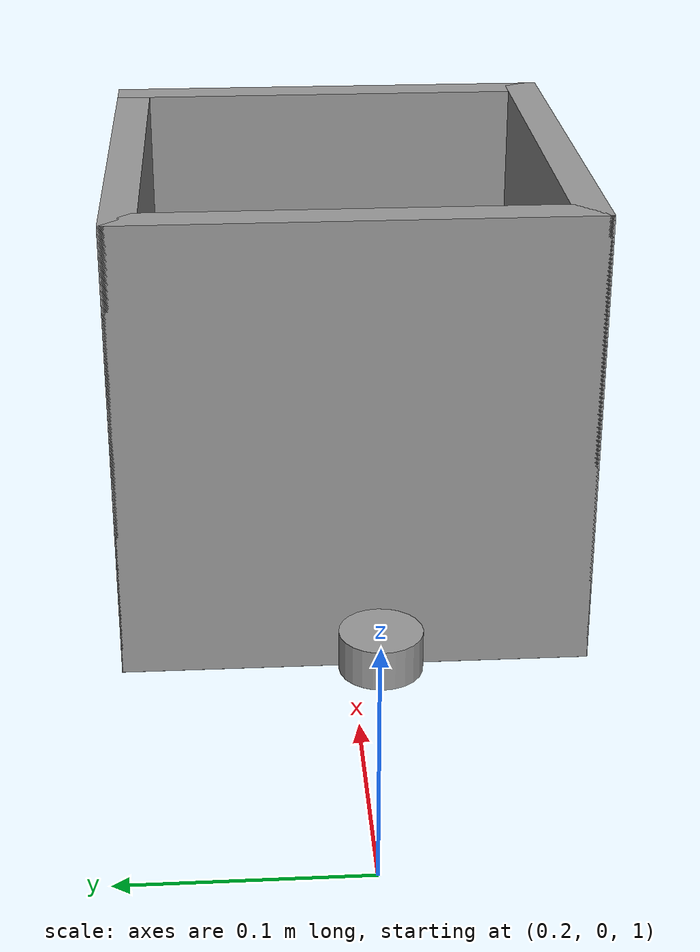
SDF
<sdf version="1.6">
 <world name="CRANE-X7 with Table">
  <include><uri>model://sun</uri></include>
  <model name="bottlecap4">
   <link name="link_0">
    <inertial>
     <mass>0.300</mass>
     <inertia>
      <ixx>0.0422855</ixx>
      <ixy>0</ixy>
      <ixz>0</ixz>
      <iyy>0.0422855</iyy>
      <iyz>0</iyz>
      <izz>0.0641301</izz>
     </inertia>
    </inertial>
    <visual name="visual">
     <geometry><cylinder><radius>0.015</radius><length>0.015</length></cylinder></geometry>
     <material>
      <lighting>1</lighting>
      <script><uri>file://media/materials/scripts/gazebo.material</uri><name>Gazebo/Grey</name></script>
      <shader type="vertex"><normal_map>__default__</normal_map></shader>
      <ambient>0.3 0.3 0.3 1</ambient>
      <diffuse>0.7 0.7 0.7 1</diffuse>
      <specular>0.01 0.01 0.01 1</specular>
      <emissive>0 0 0 1</emissive>
     </material>
    </visual>
    <collision name="collision">
     <geometry><cylinder><radius>0.015</radius><length>0.015</length></cylinder></geometry>
     <surface>
      <friction>
       <ode><mu>1</mu><mu2>1</mu2><fdir1>0 0 0</fdir1><slip1>0</slip1><slip2>0</slip2></ode>
       <torsional>
        <coefficient>1</coefficient>
        <patch_radius>0</patch_radius>
        <surface_radius>0</surface_radius>
        <use_patch_radius>1</use_patch_radius>
        <ode><slip>0</slip></ode>
       </torsional>
      </friction>
      <bounce><restitution_coefficient>0</restitution_coefficient><threshold>1e+06</threshold></bounce>
      <contact>
       <collide_without_contact>0</collide_without_contact>
       <collide_without_contact_bitmask>1</collide_without_contact_bitmask>
       <collide_bitmask>1</collide_bitmask>
       <ode>
        <soft_cfm>0</soft_cfm>
        <soft_erp>0.2</soft_erp>
        <kp>1e+13</kp>
        <kd>1</kd>
        <max_vel>0.01</max_vel>
        <min_depth>0</min_depth>
       </ode>
       <bullet>
        <split_impulse>1</split_impulse>
        <split_impulse_penetration_threshold>-0.01</split_impulse_penetration_threshold>
        <soft_cfm>0</soft_cfm>
        <soft_erp>0.2</soft_erp>
        <kp>1e+13</kp>
        <kd>1</kd>
       </bullet>
      </contact>
     </surface>
    </collision>
   </link>
   <static>0</static>
   <pose>0.2 0 1.1 0 0 0</pose>
  </model>
  <model name="trashbin">
   <link name="link_0">
    <inertial>
     <mass>0.500</mass>
     <inertia>
      <ixx>0.00236322</ixx>
      <ixy>0</ixy>
      <ixz>0</ixz>
      <iyy>0.00236322</iyy>
      <iyz>0</iyz>
      <izz>0.0047</izz>
     </inertia>
    </inertial>
    <pose>0.020 0 -0.075 0 -0 0</pose>
    <visual name="visual">
     <geometry><box><size>0.2 0.2 0.015</size></box></geometry>
     <material>
      <lighting>1</lighting>
      <script><uri>file://media/materials/scripts/gazebo.material</uri><name>Gazebo/Grey</name></script>
      <shader type="vertex"><normal_map>__default__</normal_map></shader>
      <ambient>0.3 0.3 0.3 1</ambient>
      <diffuse>0.7 0.7 0.7 1</diffuse>
      <specular>0.01 0.01 0.01 1</specular>
      <emissive>0 0 0 1</emissive>
     </material>
    </visual>
    <collision name="collision">
     <geometry><box><size>0.2 0.2 0.015</size></box></geometry>
     <surface>
      <friction>
       <ode><mu>1</mu><mu2>1</mu2><fdir1>0 0 0</fdir1><slip1>0</slip1><slip2>0</slip2></ode>
       <torsional>
        <coefficient>1</coefficient>
        <patch_radius>0</patch_radius>
        <surface_radius>0</surface_radius>
        <use_patch_radius>1</use_patch_radius>
        <ode><slip>0</slip></ode>
       </torsional>
      </friction>
      <bounce><restitution_coefficient>0</restitution_coefficient><threshold>1e+06</threshold></bounce>
      <contact>
       <collide_without_contact>0</collide_without_contact>
       <collide_without_contact_bitmask>1</collide_without_contact_bitmask>
       <collide_bitmask>1</collide_bitmask>
       <ode>
        <soft_cfm>0</soft_cfm>
        <soft_erp>0.2</soft_erp>
        <kp>1e+13</kp>
        <kd>1</kd>
        <max_vel>0.01</max_vel>
        <min_depth>0</min_depth>
       </ode>
       <bullet>
        <split_impulse>1</split_impulse>
        <split_impulse_penetration_threshold>-0.01</split_impulse_penetration_threshold>
        <soft_cfm>0</soft_cfm>
        <soft_erp>0.2</soft_erp>
        <kp>1e+13</kp>
        <kd>1</kd>
       </bullet>
      </contact>
     </surface>
    </collision>
   </link>
   <link name="link_1">
    <inertial>
     <mass>0.500</mass>
     <inertia>
      <ixx>0.00236322</ixx>
      <ixy>0</ixy>
      <ixz>0</ixz>
      <iyy>0.0047</iyy>
      <iyz>0</iyz>
      <izz>0.00236322</izz>
     </inertia>
    </inertial>
    <pose>0.0185 -0.0925 0.0185 0 -0 0</pose>
    <visual name="visual">
     <geometry><box><size>0.2 0.015 0.2</size></box></geometry>
     <material>
      <lighting>1</lighting>
      <script><uri>file://media/materials/scripts/gazebo.material</uri><name>Gazebo/Grey</name></script>
      <shader type="vertex"><normal_map>__default__</normal_map></shader>
      <ambient>0.3 0.3 0.3 1</ambient>
      <diffuse>0.7 0.7 0.7 1</diffuse>
      <specular>0.01 0.01 0.01 1</specular>
      <emissive>0 0 0 1</emissive>
     </material>
    </visual>
    <collision name="collision">
     <geometry><box><size>0.2 0.015 0.2</size></box></geometry>
     <surface>
      <friction>
       <ode><mu>1</mu><mu2>1</mu2><fdir1>0 0 0</fdir1><slip1>0</slip1><slip2>0</slip2></ode>
       <torsional>
        <coefficient>1</coefficient>
        <patch_radius>0</patch_radius>
        <surface_radius>0</surface_radius>
        <use_patch_radius>1</use_patch_radius>
        <ode><slip>0</slip></ode>
       </torsional>
      </friction>
      <bounce><restitution_coefficient>0</restitution_coefficient><threshold>1e+06</threshold></bounce>
      <contact>
       <collide_without_contact>0</collide_without_contact>
       <collide_without_contact_bitmask>1</collide_without_contact_bitmask>
       <collide_bitmask>1</collide_bitmask>
       <ode>
        <soft_cfm>0</soft_cfm>
        <soft_erp>0.2</soft_erp>
        <kp>1e+13</kp>
        <kd>1</kd>
        <max_vel>0.01</max_vel>
        <min_depth>0</min_depth>
       </ode>
       <bullet>
        <split_impulse>1</split_impulse>
        <split_impulse_penetration_threshold>-0.01</split_impulse_penetration_threshold>
        <soft_cfm>0</soft_cfm>
        <soft_erp>0.2</soft_erp>
        <kp>1e+13</kp>
        <kd>1</kd>
       </bullet>
      </contact>
     </surface>
    </collision>
   </link>
   <link name="link_2">
    <inertial>
     <mass>0.500</mass>
     <inertia>
      <ixx>0.00236322</ixx>
      <ixy>0</ixy>
      <ixz>0</ixz>
      <iyy>0.0047</iyy>
      <iyz>0</iyz>
      <izz>0.00236322</izz>
     </inertia>
    </inertial>
    <pose>0.0185 0.0925 0.0185 0 -0 0</pose>
    <visual name="visual">
     <geometry><box><size>0.2 0.015 0.2</size></box></geometry>
     <material>
      <lighting>1</lighting>
      <script><uri>file://media/materials/scripts/gazebo.material</uri><name>Gazebo/Grey</name></script>
      <shader type="vertex"><normal_map>__default__</normal_map></shader>
      <ambient>0.3 0.3 0.3 1</ambient>
      <diffuse>0.7 0.7 0.7 1</diffuse>
      <specular>0.01 0.01 0.01 1</specular>
      <emissive>0 0 0 1</emissive>
     </material>
    </visual>
    <collision name="collision">
     <geometry><box><size>0.2 0.015 0.2</size></box></geometry>
     <surface>
      <friction>
       <ode><mu>1</mu><mu2>1</mu2><fdir1>0 0 0</fdir1><slip1>0</slip1><slip2>0</slip2></ode>
       <torsional>
        <coefficient>1</coefficient>
        <patch_radius>0</patch_radius>
        <surface_radius>0</surface_radius>
        <use_patch_radius>1</use_patch_radius>
        <ode><slip>0</slip></ode>
       </torsional>
      </friction>
      <bounce><restitution_coefficient>0</restitution_coefficient><threshold>1e+06</threshold></bounce>
      <contact>
       <collide_without_contact>0</collide_without_contact>
       <collide_without_contact_bitmask>1</collide_without_contact_bitmask>
       <collide_bitmask>1</collide_bitmask>
       <ode>
        <soft_cfm>0</soft_cfm>
        <soft_erp>0.2</soft_erp>
        <kp>1e+13</kp>
        <kd>1</kd>
        <max_vel>0.01</max_vel>
        <min_depth>0</min_depth>
       </ode>
       <bullet>
        <split_impulse>1</split_impulse>
        <split_impulse_penetration_threshold>-0.01</split_impulse_penetration_threshold>
        <soft_cfm>0</soft_cfm>
        <soft_erp>0.2</soft_erp>
        <kp>1e+13</kp>
        <kd>1</kd>
       </bullet>
      </contact>
     </surface>
    </collision>
   </link>
   <link name="link_3">
    <inertial>
     <mass>0.500</mass>
     <inertia>
      <ixx>0.0047</ixx>
      <ixy>0</ixy>
      <ixz>0</ixz>
      <iyy>0.00236322</iyy>
      <iyz>0</iyz>
      <izz>0.00236322</izz>
     </inertia>
    </inertial>
    <pose>-0.074 0 0.0185 0 -0 0</pose>
    <visual name="visual">
     <geometry><box><size>0.015 0.2 0.2</size></box></geometry>
     <material>
      <lighting>1</lighting>
      <script><uri>file://media/materials/scripts/gazebo.material</uri><name>Gazebo/Grey</name></script>
      <shader type="vertex"><normal_map>__default__</normal_map></shader>
      <ambient>0.3 0.3 0.3 1</ambient>
      <diffuse>0.7 0.7 0.7 1</diffuse>
      <specular>0.01 0.01 0.01 1</specular>
      <emissive>0 0 0 1</emissive>
     </material>
    </visual>
    <collision name="collision">
     <geometry><box><size>0.015 0.2 0.2</size></box></geometry>
     <surface>
      <friction>
       <ode><mu>1</mu><mu2>1</mu2><fdir1>0 0 0</fdir1><slip1>0</slip1><slip2>0</slip2></ode>
       <torsional>
        <coefficient>1</coefficient>
        <patch_radius>0</patch_radius>
        <surface_radius>0</surface_radius>
        <use_patch_radius>1</use_patch_radius>
        <ode><slip>0</slip></ode>
       </torsional>
      </friction>
      <bounce><restitution_coefficient>0</restitution_coefficient><threshold>1e+06</threshold></bounce>
      <contact>
       <collide_without_contact>0</collide_without_contact>
       <collide_without_contact_bitmask>1</collide_without_contact_bitmask>
       <collide_bitmask>1</collide_bitmask>
       <ode>
        <soft_cfm>0</soft_cfm>
        <soft_erp>0.2</soft_erp>
        <kp>1e+13</kp>
        <kd>1</kd>
        <max_vel>0.01</max_vel>
        <min_depth>0</min_depth>
       </ode>
       <bullet>
        <split_impulse>1</split_impulse>
        <split_impulse_penetration_threshold>-0.01</split_impulse_penetration_threshold>
        <soft_cfm>0</soft_cfm>
        <soft_erp>0.2</soft_erp>
        <kp>1e+13</kp>
        <kd>1</kd>
       </bullet>
      </contact>
     </surface>
    </collision>
   </link>
   <link name="link_4">
    <inertial>
     <mass>0.500</mass>
     <inertia>
      <ixx>0.0047</ixx>
      <ixy>0</ixy>
      <ixz>0</ixz>
      <iyy>0.00236322</iyy>
      <iyz>0</iyz>
      <izz>0.00236322</izz>
     </inertia>
    </inertial>
    <pose>0.111 0 0.0185 0 -0 0</pose>
    <visual name="visual">
     <geometry><box><size>0.015 0.2 0.2</size></box></geometry>
     <material>
      <lighting>1</lighting>
      <script><uri>file://media/materials/scripts/gazebo.material</uri><name>Gazebo/Grey</name></script>
      <shader type="vertex"><normal_map>__default__</normal_map></shader>
      <ambient>0.3 0.3 0.3 1</ambient>
      <diffuse>0.7 0.7 0.7 1</diffuse>
      <specular>0.01 0.01 0.01 1</specular>
      <emissive>0 0 0 1</emissive>
     </material>
    </visual>
    <collision name="collision">
     <geometry><box><size>0.015 0.2 0.2</size></box></geometry>
     <surface>
      <friction>
       <ode><mu>1</mu><mu2>1</mu2><fdir1>0 0 0</fdir1><slip1>0</slip1><slip2>0</slip2></ode>
       <torsional>
        <coefficient>1</coefficient>
        <patch_radius>0</patch_radius>
        <surface_radius>0</surface_radius>
        <use_patch_radius>1</use_patch_radius>
        <ode><slip>0</slip></ode>
       </torsional>
      </friction>
      <bounce><restitution_coefficient>0</restitution_coefficient><threshold>1e+06</threshold></bounce>
      <contact>
       <collide_without_contact>0</collide_without_contact>
       <collide_without_contact_bitmask>1</collide_without_contact_bitmask>
       <collide_bitmask>1</collide_bitmask>
       <ode>
        <soft_cfm>0</soft_cfm>
        <soft_erp>0.2</soft_erp>
        <kp>1e+13</kp>
        <kd>1</kd>
        <max_vel>0.01</max_vel>
        <min_depth>0</min_depth>
       </ode>
       <bullet>
        <split_impulse>1</split_impulse>
        <split_impulse_penetration_threshold>-0.01</split_impulse_penetration_threshold>
        <soft_cfm>0</soft_cfm>
        <soft_erp>0.2</soft_erp>
        <kp>1e+13</kp>
        <kd>1</kd>
       </bullet>
      </contact>
     </surface>
    </collision>
   </link>
   <joint name="link_0_JOINT_0" type="fixed">
    <parent>link_0</parent>
    <child>link_1</child>
    <physics>
     <ode><limit><cfm>0</cfm><erp>0.2</erp></limit><suspension><cfm>0</cfm><erp>0.2</erp></suspension></ode>
    </physics>
   </joint>
   <joint name="link_0_JOINT_1" type="fixed">
    <parent>link_0</parent>
    <child>link_2</child>
    <physics>
     <ode><limit><cfm>0</cfm><erp>0.2</erp></limit><suspension><cfm>0</cfm><erp>0.2</erp></suspension></ode>
    </physics>
   </joint>
   <joint name="link_0_JOINT_2" type="fixed">
    <parent>link_0</parent>
    <child>link_2</child>
    <axis>
     <xyz>1 0 0</xyz>
     <use_parent_model_frame>0</use_parent_model_frame>
     <limit>
      <lower>-1.79769e+308</lower>
      <upper>1.79769e+308</upper>
      <effort>-1</effort>
      <velocity>-1</velocity>
     </limit>
     <dynamics>
      <spring_reference>0</spring_reference>
      <spring_stiffness>0</spring_stiffness>
      <damping>0</damping>
     </dynamics>
    </axis>
    <physics>
     <ode><limit><cfm>0</cfm><erp>0.2</erp></limit><suspension><cfm>0</cfm><erp>0.2</erp></suspension></ode>
    </physics>
   </joint>
   <joint name="link_0_JOINT_3" type="fixed">
    <parent>link_0</parent>
    <child>link_3</child>
    <axis>
     <xyz>1 0 0</xyz>
     <use_parent_model_frame>0</use_parent_model_frame>
     <limit>
      <lower>-1.79769e+308</lower>
      <upper>1.79769e+308</upper>
      <effort>-1</effort>
      <velocity>-1</velocity>
     </limit>
     <dynamics>
      <spring_reference>0</spring_reference>
      <spring_stiffness>0</spring_stiffness>
      <damping>0</damping>
     </dynamics>
    </axis>
    <physics>
     <ode><limit><cfm>0</cfm><erp>0.2</erp></limit><suspension><cfm>0</cfm><erp>0.2</erp></suspension></ode>
    </physics>
   </joint>
   <joint name="link_0_JOINT_4" type="fixed">
    <parent>link_0</parent>
    <child>link_4</child>
    <physics>
     <ode><limit><cfm>0</cfm><erp>0.2</erp></limit><suspension><cfm>0</cfm><erp>0.2</erp></suspension></ode>
    </physics>
   </joint>
   <joint name="link_0_JOINT_5" type="fixed">
    <parent>link_0</parent>
    <child>link_3</child>
    <physics>
     <ode><limit><cfm>0</cfm><erp>0.2</erp></limit><suspension><cfm>0</cfm><erp>0.2</erp></suspension></ode>
    </physics>
   </joint>
   <static>0</static>
   <pose>0.4 0 1.1 0 0 0</pose>
  </model>
  <model name="ground_plane">
   <include><uri>model://ground_plane</uri></include>
   <joint name="ground_joint" type="fixed"><parent>ground_plane::link</parent><child>table::link</child></joint>
  </model>
 </world>
</sdf>
